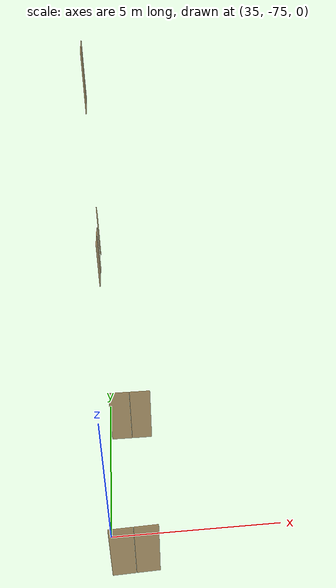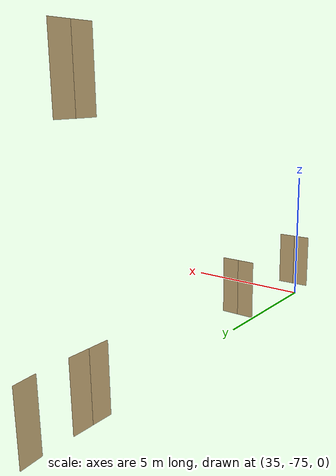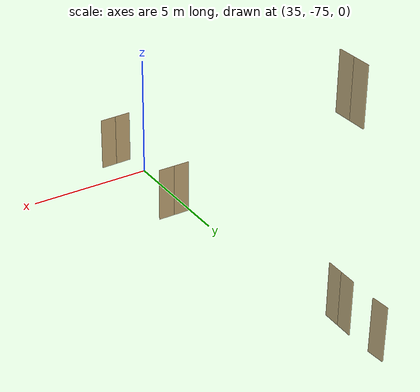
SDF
<sdf version="1.7">
 <world name="sim_world">
  <model name="TD1011AL">
   <pose>35.694736283854354 -76.12425568237657 0.0 0 0 0.03052550844454736</pose>
   <link name="right">
    <pose>0.333686512071335 0 1.11 0 0 0</pose>
    <visual name="right_visual">
     <geometry><box><size>0.65737302414267 0.03 2.2</size></box></geometry>
     <material>
      <ambient>0.5 0.25 0 0.6</ambient>
      <diffuse>0.5 0.25 0 0.6</diffuse>
      <pbr><metal><metalness>0.0</metalness></metal></pbr>
     </material>
    </visual>
    <collision name="right_collision">
     <geometry><box><size>0.65737302414267 0.03 2.2</size></box></geometry>
     <surface><contact><collide_bitmask>0x02</collide_bitmask></contact></surface>
    </collision>
    <inertial>
     <mass>50.0</mass>
     <inertia><ixx>20.17041666666667</ixx><iyy>21.967247053627002</iyy><izz>1.8043303869603309</izz></inertia>
    </inertial>
   </link>
   <joint name="right_joint" type="revolute">
    <parent>world</parent>
    <child>right</child>
    <axis><xyz>0 0 -1</xyz><limit><lower>0</lower><upper>1.57</upper></limit></axis>
    <pose>0.333686512071335 0 0 0 0 0</pose>
   </joint>
   <link name="left">
    <pose>-0.333686512071335 0 1.11 0 0 0</pose>
    <visual name="left_visual">
     <geometry><box><size>0.65737302414267 0.03 2.2</size></box></geometry>
     <material>
      <ambient>0.5 0.25 0 0.6</ambient>
      <diffuse>0.5 0.25 0 0.6</diffuse>
      <pbr><metal><metalness>0.0</metalness></metal></pbr>
     </material>
    </visual>
    <collision name="left_collision">
     <geometry><box><size>0.65737302414267 0.03 2.2</size></box></geometry>
     <surface><contact><collide_bitmask>0x02</collide_bitmask></contact></surface>
    </collision>
    <inertial>
     <mass>50.0</mass>
     <inertia><ixx>20.17041666666667</ixx><iyy>21.967247053627002</iyy><izz>1.8043303869603309</izz></inertia>
    </inertial>
   </link>
   <joint name="left_joint" type="revolute">
    <parent>world</parent>
    <child>left</child>
    <axis><xyz>0 0 -1</xyz><limit><lower>-1.57</lower><upper>0</upper></limit></axis>
    <pose>-0.333686512071335 0 0 0 0 0</pose>
   </joint>
   <plugin name="register_component" filename="libregister_component.so">
    <component name="Door">
     <v_max_door>0.5</v_max_door>
     <a_max_door>0.3</a_max_door>
     <a_nom_door>0.15</a_nom_door>
     <dx_min_door>0.01</dx_min_door>
     <f_max_door>500.0</f_max_door>
     <ros_interface>true</ros_interface>
     <door name="TD1011AL" type="DoubleSwingDoor" left_joint_name="left_joint" right_joint_name="right_joint"/>
    </component>
   </plugin>
  </model>
  <model name="TD1010AL2">
   <pose>35.71148017144721 -71.4268769761182 0.0 0 0 3.1356810753236894</pose>
   <link name="right">
    <pose>0.3312699130296567 0 1.11 0 0 0</pose>
    <visual name="right_visual">
     <geometry><box><size>0.6525398260593134 0.03 2.2</size></box></geometry>
     <material>
      <ambient>0.5 0.25 0 0.6</ambient>
      <diffuse>0.5 0.25 0 0.6</diffuse>
      <pbr><metal><metalness>0.0</metalness></metal></pbr>
     </material>
    </visual>
    <collision name="right_collision">
     <geometry><box><size>0.6525398260593134 0.03 2.2</size></box></geometry>
     <surface><contact><collide_bitmask>0x02</collide_bitmask></contact></surface>
    </collision>
    <inertial>
     <mass>50.0</mass>
     <inertia><ixx>20.17041666666667</ixx><iyy>21.940867602473</iyy><izz>1.7779509358063292</izz></inertia>
    </inertial>
   </link>
   <joint name="right_joint" type="revolute">
    <parent>world</parent>
    <child>right</child>
    <axis><xyz>0 0 -1</xyz><limit><lower>0</lower><upper>1.57</upper></limit></axis>
    <pose>0.3312699130296567 0 0 0 0 0</pose>
   </joint>
   <link name="left">
    <pose>-0.3312699130296567 0 1.11 0 0 0</pose>
    <visual name="left_visual">
     <geometry><box><size>0.6525398260593134 0.03 2.2</size></box></geometry>
     <material>
      <ambient>0.5 0.25 0 0.6</ambient>
      <diffuse>0.5 0.25 0 0.6</diffuse>
      <pbr><metal><metalness>0.0</metalness></metal></pbr>
     </material>
    </visual>
    <collision name="left_collision">
     <geometry><box><size>0.6525398260593134 0.03 2.2</size></box></geometry>
     <surface><contact><collide_bitmask>0x02</collide_bitmask></contact></surface>
    </collision>
    <inertial>
     <mass>50.0</mass>
     <inertia><ixx>20.17041666666667</ixx><iyy>21.940867602473</iyy><izz>1.7779509358063292</izz></inertia>
    </inertial>
   </link>
   <joint name="left_joint" type="revolute">
    <parent>world</parent>
    <child>left</child>
    <axis><xyz>0 0 -1</xyz><limit><lower>-1.57</lower><upper>0</upper></limit></axis>
    <pose>-0.3312699130296567 0 0 0 0 0</pose>
   </joint>
   <plugin name="register_component" filename="libregister_component.so">
    <component name="Door">
     <v_max_door>0.5</v_max_door>
     <a_max_door>0.3</a_max_door>
     <a_nom_door>0.15</a_nom_door>
     <dx_min_door>0.01</dx_min_door>
     <f_max_door>500.0</f_max_door>
     <ros_interface>true</ros_interface>
     <door name="TD1010AL2" type="DoubleSwingDoor" left_joint_name="left_joint" right_joint_name="right_joint"/>
    </component>
   </plugin>
  </model>
  <model name="TD1008AL">
   <pose>34.56893429213082 -62.36942136352812 0.0 0 0 1.5568159788755287</pose>
   <link name="right">
    <pose>0.338361719504987 0 1.11 0 0 0</pose>
    <visual name="right_visual">
     <geometry><box><size>0.666723439009974 0.03 2.2</size></box></geometry>
     <material>
      <ambient>0.5 0.25 0 0.6</ambient>
      <diffuse>0.5 0.25 0 0.6</diffuse>
      <pbr><metal><metalness>0.0</metalness></metal></pbr>
     </material>
    </visual>
    <collision name="right_collision">
     <geometry><box><size>0.666723439009974 0.03 2.2</size></box></geometry>
     <surface><contact><collide_bitmask>0x02</collide_bitmask></contact></surface>
    </collision>
    <inertial>
     <mass>50.0</mass>
     <inertia><ixx>20.17041666666667</ixx><iyy>22.018833933855365</iyy><izz>1.8559172671886939</izz></inertia>
    </inertial>
   </link>
   <joint name="right_joint" type="revolute">
    <parent>world</parent>
    <child>right</child>
    <axis><xyz>0 0 -1</xyz><limit><lower>0</lower><upper>1.57</upper></limit></axis>
    <pose>0.338361719504987 0 0 0 0 0</pose>
   </joint>
   <link name="left">
    <pose>-0.338361719504987 0 1.11 0 0 0</pose>
    <visual name="left_visual">
     <geometry><box><size>0.666723439009974 0.03 2.2</size></box></geometry>
     <material>
      <ambient>0.5 0.25 0 0.6</ambient>
      <diffuse>0.5 0.25 0 0.6</diffuse>
      <pbr><metal><metalness>0.0</metalness></metal></pbr>
     </material>
    </visual>
    <collision name="left_collision">
     <geometry><box><size>0.666723439009974 0.03 2.2</size></box></geometry>
     <surface><contact><collide_bitmask>0x02</collide_bitmask></contact></surface>
    </collision>
    <inertial>
     <mass>50.0</mass>
     <inertia><ixx>20.17041666666667</ixx><iyy>22.018833933855365</iyy><izz>1.8559172671886939</izz></inertia>
    </inertial>
   </link>
   <joint name="left_joint" type="revolute">
    <parent>world</parent>
    <child>left</child>
    <axis><xyz>0 0 -1</xyz><limit><lower>-1.57</lower><upper>0</upper></limit></axis>
    <pose>-0.338361719504987 0 0 0 0 0</pose>
   </joint>
   <plugin name="register_component" filename="libregister_component.so">
    <component name="Door">
     <v_max_door>0.5</v_max_door>
     <a_max_door>0.3</a_max_door>
     <a_nom_door>0.15</a_nom_door>
     <dx_min_door>0.01</dx_min_door>
     <f_max_door>500.0</f_max_door>
     <ros_interface>true</ros_interface>
     <door name="TD1008AL" type="DoubleSwingDoor" left_joint_name="left_joint" right_joint_name="right_joint"/>
    </component>
   </plugin>
  </model>
  <model name="TN2">
   <pose>34.550013250253116 -60.30635445217207 0.0 0 0 -1.4909927351613321</pose>
   <link name="right">
    <pose>0 0 1.11 0 0 0</pose>
    <visual name="right_visual">
     <geometry><box><size>0.7020408952186347 0.03 2.2</size></box></geometry>
     <material>
      <ambient>0.5 0.25 0 0.6</ambient>
      <diffuse>0.5 0.25 0 0.6</diffuse>
      <pbr><metal><metalness>0.0</metalness></metal></pbr>
     </material>
    </visual>
    <collision name="right_collision">
     <geometry><box><size>0.7020408952186347 0.03 2.2</size></box></geometry>
     <surface><contact><collide_bitmask>0x02</collide_bitmask></contact></surface>
    </collision>
    <inertial>
     <mass>50.0</mass>
     <inertia><ixx>20.17041666666667</ixx><iyy>22.220255910664097</iyy><izz>2.057339243997425</izz></inertia>
    </inertial>
   </link>
   <joint name="right_joint" type="revolute">
    <parent>world</parent>
    <child>right</child>
    <axis><xyz>0 0 -1</xyz><limit><lower>0</lower><upper>1.57</upper></limit></axis>
    <pose>0.35602044760931734 0 0 0 0 0</pose>
   </joint>
   <plugin name="register_component" filename="libregister_component.so">
    <component name="Door">
     <v_max_door>0.5</v_max_door>
     <a_max_door>0.3</a_max_door>
     <a_nom_door>0.15</a_nom_door>
     <dx_min_door>0.01</dx_min_door>
     <f_max_door>500.0</f_max_door>
     <ros_interface>true</ros_interface>
     <door name="TN2" type="SwingDoor" left_joint_name="empty_joint" right_joint_name="right_joint"/>
    </component>
   </plugin>
  </model>
  <model name="TD1107AL1">
   <pose>34.64926711548466 -62.428015983598065 8.0 0 0 1.5958340804097362</pose>
   <link name="right">
    <pose>0.3451872536102721 0 1.11 0 0 0</pose>
    <visual name="right_visual">
     <geometry><box><size>0.6803745072205442 0.03 2.2</size></box></geometry>
     <material>
      <ambient>0.5 0.25 0 0.6</ambient>
      <diffuse>0.5 0.25 0 0.6</diffuse>
      <pbr><metal><metalness>0.0</metalness></metal></pbr>
     </material>
    </visual>
    <collision name="right_collision">
     <geometry><box><size>0.6803745072205442 0.03 2.2</size></box></geometry>
     <surface><contact><collide_bitmask>0x02</collide_bitmask></contact></surface>
    </collision>
    <inertial>
     <mass>50.0</mass>
     <inertia><ixx>20.17041666666667</ixx><iyy>22.095456125315</iyy><izz>1.9325394586483264</izz></inertia>
    </inertial>
   </link>
   <joint name="right_joint" type="revolute">
    <parent>world</parent>
    <child>right</child>
    <axis><xyz>0 0 -1</xyz><limit><lower>0</lower><upper>1.57</upper></limit></axis>
    <pose>0.3451872536102721 0 0 0 0 0</pose>
   </joint>
   <link name="left">
    <pose>-0.3451872536102721 0 1.11 0 0 0</pose>
    <visual name="left_visual">
     <geometry><box><size>0.6803745072205442 0.03 2.2</size></box></geometry>
     <material>
      <ambient>0.5 0.25 0 0.6</ambient>
      <diffuse>0.5 0.25 0 0.6</diffuse>
      <pbr><metal><metalness>0.0</metalness></metal></pbr>
     </material>
    </visual>
    <collision name="left_collision">
     <geometry><box><size>0.6803745072205442 0.03 2.2</size></box></geometry>
     <surface><contact><collide_bitmask>0x02</collide_bitmask></contact></surface>
    </collision>
    <inertial>
     <mass>50.0</mass>
     <inertia><ixx>20.17041666666667</ixx><iyy>22.095456125315</iyy><izz>1.9325394586483264</izz></inertia>
    </inertial>
   </link>
   <joint name="left_joint" type="revolute">
    <parent>world</parent>
    <child>left</child>
    <axis><xyz>0 0 -1</xyz><limit><lower>-1.57</lower><upper>0</upper></limit></axis>
    <pose>-0.3451872536102721 0 0 0 0 0</pose>
   </joint>
   <plugin name="register_component" filename="libregister_component.so">
    <component name="Door">
     <v_max_door>0.5</v_max_door>
     <a_max_door>0.3</a_max_door>
     <a_nom_door>0.15</a_nom_door>
     <dx_min_door>0.01</dx_min_door>
     <f_max_door>500.0</f_max_door>
     <ros_interface>true</ros_interface>
     <door name="TD1107AL1" type="DoubleSwingDoor" left_joint_name="left_joint" right_joint_name="right_joint"/>
    </component>
   </plugin>
  </model>
 </world>
</sdf>
